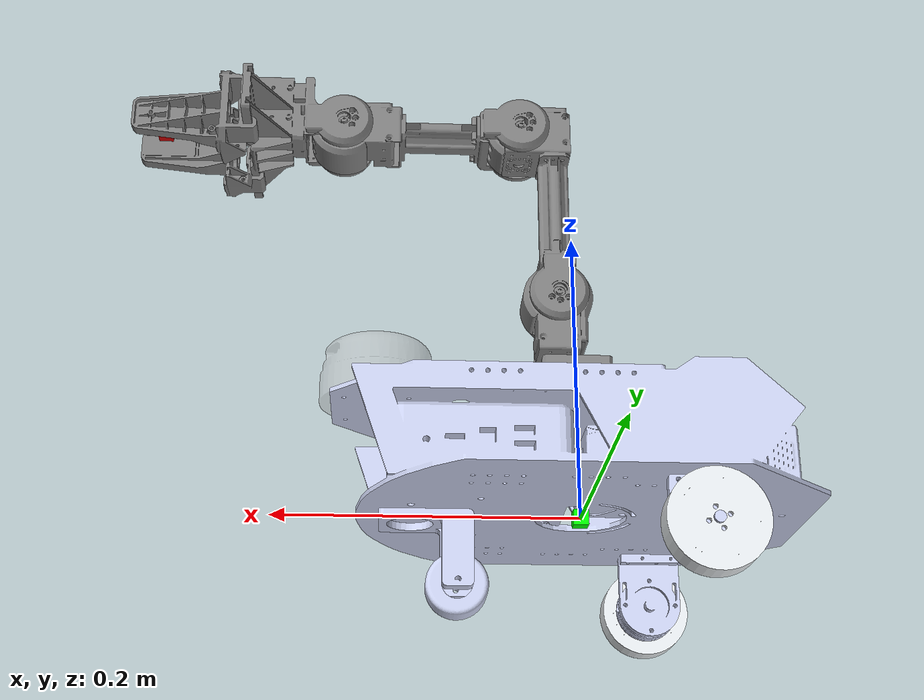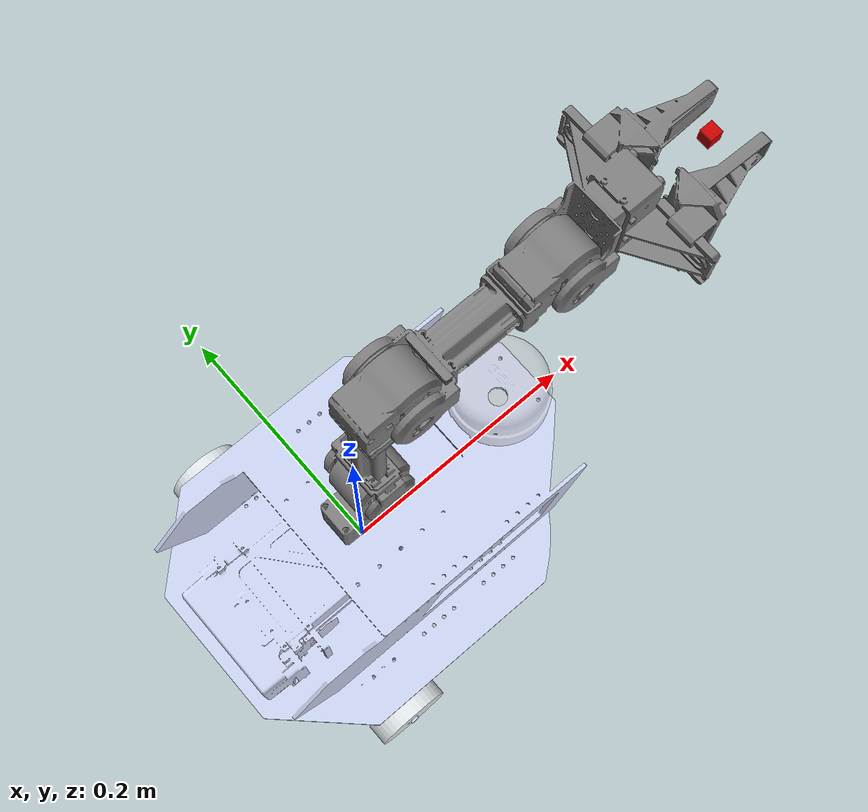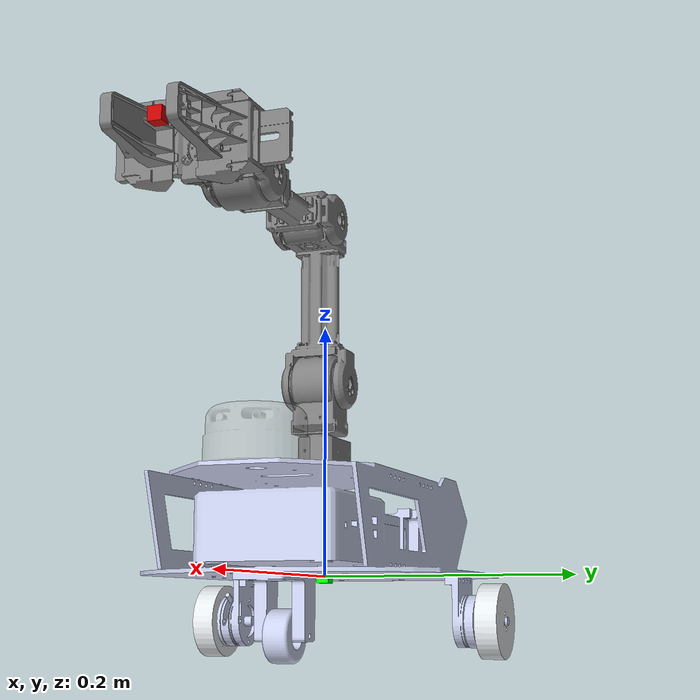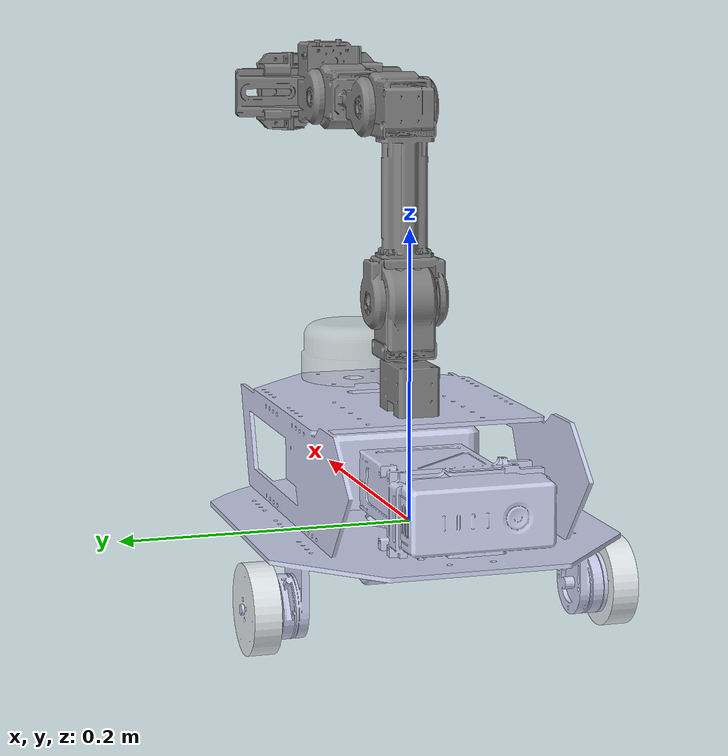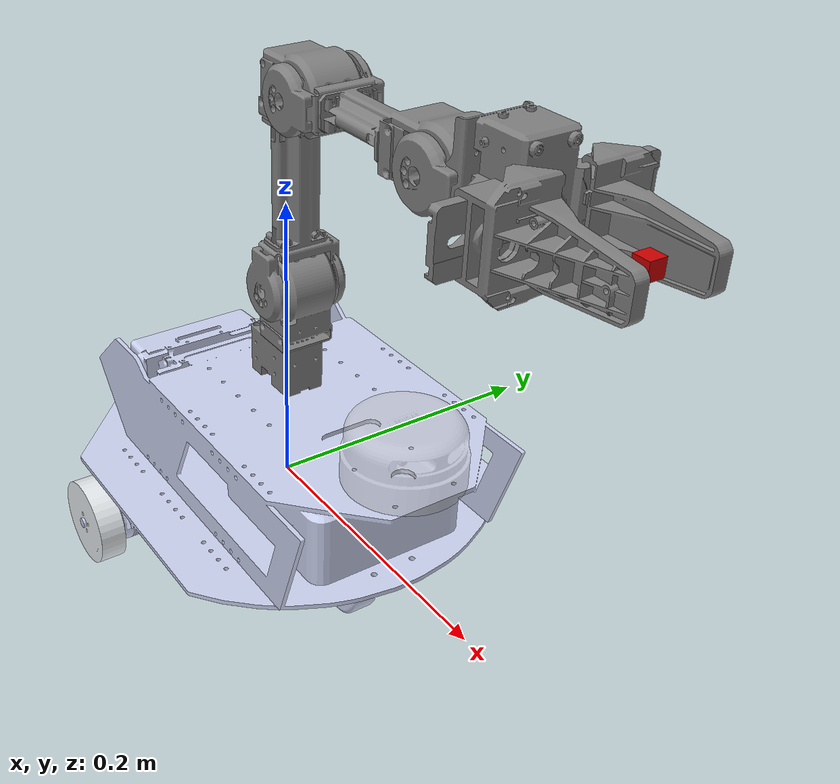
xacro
<?xml version="1.0" encoding="utf-8"?>
<robot name="arx_mini_description" xmlns:xacro="http://ros.org/wiki/xacro">

  <!-- Import Rviz colors -->
  <xacro:include filename="$(find open_manipulator_description)/urdf/materials.xacro" />

  <!-- Import all Gazebo-customization elements, including Gazebo colors -->
  <xacro:include filename="$(find open_manipulator_description)/urdf/open_manipulator.gazebo.xacro" />

  <!-- Import Transmission -->
  <xacro:include filename="$(find open_manipulator_description)/urdf/open_manipulator.transmission.xacro" />

  <!-- Import URDF -->
  <xacro:include filename="$(find open_manipulator_description)/urdf/open_manipulator.urdf.xacro" />

  <!-- manipulator fixed joint-->
  <joint name="manipulator_fixed" type="fixed">
    <origin xyz="0 0 0.075" rpy="0 0 0"/>
    <parent link="base_link"/>
    <child link="link1"/>
  </joint>

  <link
    name="base_link">
    <inertial>
      <origin
        xyz="0.015887 -0.00054953 0.028848"
        rpy="0 0 0" />
      <mass
        value="15.062" />
      <inertia
        ixx="0.0021916"
        ixy="-3.614E-06"
        ixz="8.4882E-06"
        iyy="0.0032298"
        iyz="2.6215E-06"
        izz="0.004925" />
    </inertial>
    <visual>
      <origin
        xyz="0 0 0"
        rpy="0 0 0" />
      <geometry>
        <mesh
          filename="package://arx_mini_description/meshes/base_link.STL" />
      </geometry>
      <material
        name="">
        <color
          rgba="0.79216 0.81961 0.93333 1" />
      </material>
    </visual>
    <collision>
      <origin
        xyz="0 0 0"
        rpy="0 0 0" />
      <geometry>
        <mesh
          filename="package://arx_mini_description/meshes/base_link.STL" />
      </geometry>
    </collision>
  </link>
  <link
    name="laser">
    <inertial>
      <origin
        xyz="-0.00056545 -1.4938E-05 -0.011701"
        rpy="0 0 0" />
      <mass
        value="1.6538" />
      <inertia
        ixx="7.8865E-05"
        ixy="4.8472E-08"
        ixz="2.1848E-06"
        iyy="7.519E-05"
        iyz="2.886E-08"
        izz="0.00010995" />
    </inertial>
    <visual>
      <origin
        xyz="0 0 0"
        rpy="0 0 0" />
      <geometry>
        <mesh
          filename="package://arx_mini_description/meshes/laser.STL" />
      </geometry>
      <material
        name="">
        <color
          rgba="0.75294 0.75294 0.75294 0.4" />
      </material>
    </visual>
    <collision>
      <origin
        xyz="0 0 0"
        rpy="0 0 0" />
      <geometry>
        <mesh
          filename="package://arx_mini_description/meshes/laser.STL" />
      </geometry>
    </collision>
  </link>
  <joint
    name="base_link_to_laser"
    type="fixed">
    <origin
      xyz="0.133 0 0.107171615364778"
      rpy="0 0 0" />
    <parent
      link="base_link" />
    <child
      link="laser" />
    <axis
      xyz="0 0 0" />
  </joint>
  <link
    name="left_wheel_link">
    <inertial>
      <origin
        xyz="-1.3878E-17 -0.0080105 -1.3878E-17"
        rpy="0 0 0" />
      <mass
        value="0.80724" />
      <inertia
        ixx="2.6957E-05"
        ixy="-7.5305E-20"
        ixz="1.469E-21"
        iyy="4.9447E-05"
        iyz="2.2384E-20"
        izz="2.6957E-05" />
    </inertial>
    <visual>
      <origin
        xyz="0 0 0"
        rpy="0 0 0" />
      <geometry>
        <mesh
          filename="package://arx_mini_description/meshes/left_wheel_link.STL" />
      </geometry>
      <material
        name="">
        <color
          rgba="0.89804 0.91765 0.92941 1" />
      </material>
    </visual>
    <collision>
      <origin
        xyz="0 0 0"
        rpy="0 0 0" />
      <geometry>
        <mesh
          filename="package://arx_mini_description/meshes/left_wheel_link.STL" />
      </geometry>
    </collision>
  </link>
  <joint
    name="base_link_to_left_wheel"
    type="continuous">
    <origin
      xyz="-0.06 0.131 -0.035"
      rpy="0 0 0" />
    <parent
      link="base_link" />
    <child
      link="left_wheel_link" />
    <axis
      xyz="0 1 0" />
  </joint>
  <link
    name="right_wheel_link">
    <inertial>
      <origin
        xyz="2.7756E-17 0.0080105 -1.3878E-17"
        rpy="0 0 0" />
      <mass
        value="0.80724" />
      <inertia
        ixx="2.6957E-05"
        ixy="-7.4963E-20"
        ixz="-1.469E-21"
        iyy="4.9447E-05"
        iyz="-2.3687E-20"
        izz="2.6957E-05" />
    </inertial>
    <visual>
      <origin
        xyz="0 0 0"
        rpy="0 0 0" />
      <geometry>
        <mesh
          filename="package://arx_mini_description/meshes/right_wheel_link.STL" />
      </geometry>
      <material
        name="">
        <color
          rgba="0.89804 0.91765 0.92941 1" />
      </material>
    </visual>
    <collision>
      <origin
        xyz="0 0 0"
        rpy="0 0 0" />
      <geometry>
        <mesh
          filename="package://arx_mini_description/meshes/right_wheel_link.STL" />
      </geometry>
    </collision>
  </link>
  <joint
    name="base_link_to_right_wheel"
    type="continuous">
    <origin
      xyz="-0.06 -0.131 -0.035"
      rpy="0 0 0" />
    <parent
      link="base_link" />
    <child
      link="right_wheel_link" />
    <axis
      xyz="0 1 0" />
  </joint>
  <link
    name="caster_holder_link">
    <inertial>
      <origin
        xyz="-0.024794 0 -0.018851"
        rpy="0 0 0" />
      <mass
        value="0.25767" />
      <inertia
        ixx="1.1549E-05"
        ixy="3.8856E-21"
        ixz="-2.1936E-06"
        iyy="1.0961E-05"
        iyz="-8.0435E-22"
        izz="1.0298E-05" />
    </inertial>
    <visual>
      <origin
        xyz="0 0 0"
        rpy="0 0 0" />
      <geometry>
        <mesh
          filename="package://arx_mini_description/meshes/caster_holder_link.STL" />
      </geometry>
      <material
        name="">
        <color
          rgba="0.79216 0.81961 0.93333 1" />
      </material>
    </visual>
    <collision>
      <origin
        xyz="0 0 0"
        rpy="0 0 0" />
      <geometry>
        <mesh
          filename="package://arx_mini_description/meshes/caster_holder_link.STL" />
      </geometry>
    </collision>
  </link>
  <joint
    name="base_link_to_caster_holder"
    type="continuous">
    <origin
      xyz="0.11 0 0"
      rpy="0 0 0" />
    <parent
      link="base_link" />
    <child
      link="caster_holder_link" />
    <axis
      xyz="0 0 -1" />
  </joint>
  <link
    name="caster_wheel_link">
    <inertial>
      <origin
        xyz="2.7756E-17 0.01 0"
        rpy="0 0 0" />
      <mass
        value="0.1838" />
      <inertia
        ixx="2.8557E-06"
        ixy="-7.698E-22"
        ixz="9.2088E-39"
        iyy="4.5367E-06"
        iyz="-4.5492E-23"
        izz="2.8557E-06" />
    </inertial>
    <visual>
      <origin
        xyz="0 0 0"
        rpy="0 0 0" />
      <geometry>
        <mesh
          filename="package://arx_mini_description/meshes/caster_wheel_link.STL" />
      </geometry>
      <material
        name="">
        <color
          rgba="0.79216 0.81961 0.93333 1" />
      </material>
    </visual>
    <collision>
      <origin
        xyz="0 0 0"
        rpy="0 0 0" />
      <geometry>
        <mesh
          filename="package://arx_mini_description/meshes/caster_wheel_link.STL" />
      </geometry>
    </collision>
  </link>
  <joint
    name="base_link_to_caster_wheel"
    type="continuous">
    <origin
      xyz="-0.03 -0.01 -0.045"
      rpy="0 0 0" />
    <parent
      link="caster_holder_link" />
    <child
      link="caster_wheel_link" />
    <axis
      xyz="0 1 0" />
  </joint>
  <link name="imu_link">
    <collision>
      <origin rpy="0 0 0" xyz="0 0 0"/>
      <geometry>
        <box size="0.01 0.01 0.01"/>
      </geometry>
    </collision>
    <visual>
      <origin rpy="0 0 0" xyz="0 0 0"/>
      <geometry>
        <box size="0.01 0.01 0.01"/>
      </geometry>
      <material name="green">
        <color rgba="0 1 0 1"/>
      </material>
    </visual>
    <inertial>
      <mass value="1e-2"/>
      <origin rpy="0 0 0" xyz="0 0 0"/>
      <inertia ixx="1e-6" ixy="0" ixz="0" iyy="1e-6" iyz="0" izz="1e-6"/>
    </inertial>
  </link>
  <joint name="base_link_to_imu_link" type="fixed">
    <axis xyz="0 1 0"/>
    <origin rpy="0 0 0" xyz="0 0 0"/>
    <parent link="base_link"/>
    <child link="imu_link"/>
  </joint>

  <transmission name="base_link_to_left_wheel_trans">
    <type>transmission_interface/SimpleTransmission</type>
    <joint name="base_link_to_left_wheel">
      <hardwareInterface>hardware_interface/VelocityJointInterface</hardwareInterface>
    </joint>
    <actuator name="base_link_to_left_wheel_motor">
      <hardwareInterface>hardware_interface/VelocityJointInterface</hardwareInterface>
      <mechanicalReduction>1</mechanicalReduction>
    </actuator>
  </transmission>

  <transmission name="base_link_to_right_wheel_trans">
    <type>transmission_interface/SimpleTransmission</type>
    <joint name="base_link_to_right_wheel">
      <hardwareInterface>hardware_interface/VelocityJointInterface</hardwareInterface>
    </joint>
    <actuator name="base_link_to_right_wheel_motor">
      <hardwareInterface>hardware_interface/VelocityJointInterface</hardwareInterface>
      <mechanicalReduction>1</mechanicalReduction>
    </actuator>
  </transmission>

  <transmission name="base_link_to_caster_holder_trans">
    <type>transmission_interface/SimpleTransmission</type>
    <joint name="base_link_to_caster_holder_wheel">
      <hardwareInterface>hardware_interface/VelocityJointInterface</hardwareInterface>
    </joint>
    <actuator name="base_link_to_caster_holder_motor">
      <hardwareInterface>hardware_interface/VelocityJointInterface</hardwareInterface>
      <mechanicalReduction>1</mechanicalReduction>
    </actuator>
  </transmission>

  <transmission name="base_link_to_caster_wheel_trans">
    <type>transmission_interface/SimpleTransmission</type>
    <joint name="base_link_to_caster_wheel_wheel">
      <hardwareInterface>hardware_interface/VelocityJointInterface</hardwareInterface>
    </joint>
    <actuator name="base_link_to_caster_wheel_motor">
      <hardwareInterface>hardware_interface/VelocityJointInterface</hardwareInterface>
      <mechanicalReduction>1</mechanicalReduction>
    </actuator>
  </transmission>

  <gazebo reference="base_link">
    <material>Gazebo/White</material>
  </gazebo>
  <gazebo reference="base_footprint">
    <material>Gazebo/White</material>
  </gazebo>
  <gazebo reference="imu_link">
    <material>Gazebo/White</material>
  </gazebo>
  <gazebo reference="left_wheel_link">
    <material>Gazebo/White</material>
  </gazebo>
  <gazebo reference="right_wheel_link">
    <material>Gazebo/White</material>
  </gazebo>
  <gazebo reference="caster_holder_link">
    <material>Gazebo/White</material>
  </gazebo>
  <gazebo reference="caster_wheel_link">
    <material>Gazebo/White</material>
  </gazebo>
  <gazebo reference="laser">
    <material>Gazebo/White</material>
  </gazebo>

<gazebo>
  <plugin name="differential_drive_controller" filename="libgazebo_ros_diff_drive.so">
    <updateRate> 50 </updateRate>
    <rosDebugLevel>Debug</rosDebugLevel>
    <leftJoint>base_link_to_left_wheel</leftJoint>
    <rightJoint>base_link_to_right_wheel</rightJoint>
    <wheelSeparation>0.241</wheelSeparation>
    <wheelDiameter>0.06</wheelDiameter>
    <wheelAcceleration>1.0</wheelAcceleration>
    <wheelTorque>20</wheelTorque>
    <commandTopic>cmd_vel</commandTopic>
    <odometryTopic>wheel_odom</odometryTopic>
    <odometryFrame>wheel_odom</odometryFrame>
    <robotBaseFrame>base_footprint</robotBaseFrame>
    <odometrySource>world</odometrySource>
    <publishWheelTF>false</publishWheelTF>
    <publishOdom>true</publishOdom>
    <publishOdomTF>false</publishOdomTF>
    <publishTF>false</publishTF>
    <publishWheelJointState>false</publishWheelJointState>
    <legacyMode>false</legacyMode>
  </plugin>
</gazebo>

  <gazebo reference="laser">
    <sensor name="head_hokuyo_sensor" type="ray">
      <!-- GPU -->
      <pose>0 0 0 0 0 0</pose>
      <visualize>false</visualize>
      <update_rate>15</update_rate>
      <ray>
        <scan>
          <horizontal>
            <samples>720</samples>
            <resolution>1</resolution>
            <min_angle>-3.1415926</min_angle>
            <max_angle>3.1415926</max_angle>
          </horizontal>
        </scan>
        <range>
          <min>0.05</min>
          <max>30.0</max>
          <resolution>0.01</resolution>
        </range>
        <noise>
          <type>gaussian</type>
          <mean>0.0</mean>
          <stddev>0.01</stddev>
        </noise>
      </ray>
      <!-- GPU版本 -->
      <plugin filename="libgazebo_ros_laser.so" name="gazebo_ros_head_hokuyo_controller">
        <topicName>scan</topicName>
        <frameName>laser</frameName>
      </plugin>
    </sensor>
  </gazebo>

  <gazebo reference="imu_link">
    <gravity>true</gravity>
    <sensor name="imu_sensor" type="imu">
      <always_on>true</always_on>
      <update_rate>100</update_rate>
      <visualize>true</visualize>
      <topic>__default_topic__</topic>
      <plugin filename="libgazebo_ros_imu_sensor.so" name="imu_plugin">
        <topicName>gazebo/imu/data</topicName>
        <bodyName>imu_link</bodyName>
        <updateRateHZ>100.0</updateRateHZ>
        <gaussianNoise>0.0</gaussianNoise>
        <xyzOffset>0 0 0</xyzOffset>
        <rpyOffset>0 0 0</rpyOffset>
        <frameName>imu_link</frameName>
      </plugin>
      <pose>0 0 0 0 0 0</pose>
    </sensor>
  </gazebo>

</robot>

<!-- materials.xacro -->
<robot>

  <material name="black">
    <color rgba="0.0 0.0 0.0 1.0"/>
  </material>

  <material name="white">
    <color rgba="1.0 1.0 1.0 1.0"/>
  </material>

  <material name="red">
    <color rgba="0.8 0.0 0.0 1.0"/>
  </material>

  <material name="blue">
    <color rgba="0.0 0.0 0.8 1.0"/>
  </material>

  <material name="green">
    <color rgba="0.0 0.8 0.0 1.0"/>
  </material>

  <material name="grey">
    <color rgba="0.5 0.5 0.5 1.0"/>
  </material>

  <material name="orange">
    <color rgba="${255/255} ${108/255} ${10/255} 1.0"/>
  </material>

  <material name="brown">
    <color rgba="${222/255} ${207/255} ${195/255} 1.0"/>
  </material>

</robot>

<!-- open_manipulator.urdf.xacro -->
<!-- Open_Manipulator Chain -->
<robot xmlns:xacro="http://ros.org/wiki/xacro">

  <!-- Link 1 -->
  <link name="link1">
    <visual>
      <origin xyz="0 0 0" rpy="0 0 0"/>
      <geometry>
        <mesh filename="package://open_manipulator_description/meshes/chain_link1.stl" scale="0.001 0.001 0.001"/>
      </geometry>
      <material name="grey"/>
    </visual>

    <collision>
      <origin xyz="0 0 0" rpy="0 0 0"/>
      <geometry>
        <mesh filename="package://open_manipulator_description/meshes/chain_link1.stl" scale="0.001 0.001 0.001"/>
      </geometry>
    </collision>

    <inertial>
      <origin xyz="3.0876154e-04 0.0000000e+00 -1.2176461e-04" />
      <mass value="7.9119962e-02" />
      <inertia ixx="1.2505234e-05" ixy="0.0" ixz="-1.7855208e-07"
               iyy="2.1898364e-05" iyz="0.0"
               izz="1.9267361e-05" />
    </inertial>
  </link>

  <!-- Joint 1 -->
  <joint name="joint1" type="revolute">
    <parent link="link1"/>
    <child link="link2"/>
    <origin xyz="0.012 0.0 0.017" rpy="0 0 0"/>
    <axis xyz="0 0 1"/>
    <limit velocity="4.8" effort="1" lower="${-pi*0.9}" upper="${pi*0.9}" />
  </joint>

  <!--  Link 2 -->
  <link name="link2">
    <visual>
      <origin xyz="0 0 0.019" rpy="0 0 0"/>
      <geometry>
        <mesh filename="package://open_manipulator_description/meshes/chain_link2.stl" scale="0.001 0.001 0.001"/>
      </geometry>
      <material name="grey"/>
    </visual>

    <collision>
      <origin xyz="0 0 0.019" rpy="0 0 0"/>
      <geometry>
        <mesh filename="package://open_manipulator_description/meshes/chain_link2.stl" scale="0.001 0.001 0.001"/>
      </geometry>
    </collision>

    <inertial>
      <origin xyz="-3.0184870e-04 5.4043684e-04 ${0.018 + 2.9433464e-02}" />
      <mass value="9.8406837e-02" />
      <inertia ixx="3.4543422e-05" ixy="-1.6031095e-08" ixz="-3.8375155e-07"
               iyy="3.2689329e-05" iyz="2.8511935e-08"
               izz="1.8850320e-05" />
    </inertial>
  </link>

  <!--  Joint 2 -->
  <joint name="joint2" type="revolute">
    <parent link="link2"/>
    <child link="link3"/>
    <origin xyz="0.0 0.0 0.0595" rpy="0 0 0"/>
    <axis xyz="0 1 0"/>
    <limit velocity="4.8" effort="1" lower="${-pi*0.57}" upper="${pi*0.5}" />
  </joint>

  <!--  Link 3 -->
  <link name="link3">
    <visual>
      <origin xyz="0 0 0" rpy="0 0 0"/>
      <geometry>
        <mesh filename="package://open_manipulator_description/meshes/chain_link3.stl" scale="0.001 0.001 0.001"/>
      </geometry>
      <material name="grey"/>
    </visual>

    <collision>
      <origin xyz="0 0 0" rpy="0 0 0"/>
      <geometry>
        <mesh filename="package://open_manipulator_description/meshes/chain_link3.stl" scale="0.001 0.001 0.001"/>
      </geometry>
    </collision>

    <inertial>
      <origin xyz="1.0308393e-02 3.7743363e-04 1.0170197e-01" />
      <mass value="1.3850917e-01" />
      <inertia ixx="3.3055381e-04" ixy="-9.7940978e-08" ixz="-3.8505711e-05"
               iyy="3.4290447e-04" iyz="-1.5717516e-06"
               izz="6.0346498e-05" />
    </inertial>
  </link>

  <!--  Joint 3 -->
  <joint name="joint3" type="revolute">
    <parent link="link3"/>
    <child link="link4"/>
    <origin xyz="0.024 0 0.128" rpy="0 0 0"/>
    <axis xyz="0 1 0"/>
    <limit velocity="4.8" effort="1" lower="${-pi*0.3}" upper="${pi*0.44}" />
  </joint>

  <!--  Link 4 -->
  <link name="link4">
    <visual>
      <origin xyz="0 0 0" rpy="0 0 0"/>
      <geometry>
        <mesh filename="package://open_manipulator_description/meshes/chain_link4.stl" scale="0.001 0.001 0.001"/>
      </geometry>
      <material name="grey"/>
    </visual>

    <collision>
      <origin xyz="0 0 0" rpy="0 0 0"/>
      <geometry>
        <mesh filename="package://open_manipulator_description/meshes/chain_link4.stl" scale="0.001 0.001 0.001"/>
      </geometry>
    </collision>

    <inertial>
      <origin xyz="9.0909590e-02 3.8929816e-04 2.2413279e-04" />
      <mass value="1.3274562e-01" />
      <inertia ixx="3.0654178e-05" ixy="-1.2764155e-06" ixz="-2.6874417e-07"
               iyy="2.4230292e-04" iyz="1.1559550e-08"
               izz="2.5155057e-04" />
    </inertial>
  </link>

  <!--  Joint 4 -->
  <joint name="joint4" type="revolute">
    <parent link="link4"/>
    <child link="link5"/>
    <origin xyz="0.124 0.0 0.0" rpy="0 0 0"/>
    <axis xyz="0 1 0"/>
    <limit velocity="4.8" effort="1" lower="${-pi*0.57}" upper="${pi*0.65}" />
  </joint>

  <!--  Link 5 -->
  <link name="link5">
    <visual>
      <origin xyz="0 0 0" rpy="0 0 0"/>
      <geometry>
        <mesh filename="package://open_manipulator_description/meshes/chain_link5.stl" scale="0.001 0.001 0.001"/>
      </geometry>
      <material name="grey"/>
    </visual>

    <collision>
      <origin xyz="0 0 0" rpy="0 0 0"/>
      <geometry>
        <mesh filename="package://open_manipulator_description/meshes/chain_link5.stl" scale="0.001 0.001 0.001"/>
      </geometry>
    </collision>

    <inertial>
      <origin xyz="4.4206755e-02 3.6839985e-07 8.9142216e-03" />
      <mass value="1.4327573e-01" />
      <inertia ixx="8.0870749e-05" ixy="0.0" ixz="-1.0157896e-06"
               iyy="7.5980465e-05" iyz="0.0"
               izz="9.3127351e-05" />
    </inertial>
  </link>

  <!--  Gripper joint -->
  <joint name="gripper" type="prismatic">
    <parent link="link5"/>
    <child link="gripper_link"/>
    <origin xyz="0.0817 0.021 0.0" rpy="0 0 0"/>
    <axis xyz="0 1 0"/>
    <limit velocity="4.8" effort="1" lower="-0.010" upper="0.019" />
  </joint>

  <!--  Gripper link -->
  <link name="gripper_link">
    <visual>
      <origin xyz="0.0 0.0 0" rpy="0 0 0"/>
      <geometry>
        <mesh filename="package://open_manipulator_description/meshes/chain_link_grip_l.stl" scale="0.001 0.001 0.001"/>
      </geometry>
      <material name="grey"/>
    </visual>

    <collision>
      <origin xyz="0.0 0.0 0" rpy="0 0 0"/>
      <geometry>
        <mesh filename="package://open_manipulator_description/meshes/chain_link_grip_l.stl" scale="0.001 0.001 0.001"/>
      </geometry>
    </collision>

    <inertial>
      <origin xyz="0 0 0" />
      <mass value="1.0e-03" />
      <inertia ixx="1.0e-03" ixy="0.0" ixz="0.0"
               iyy="1.0e-03" iyz="0.0"
               izz="1.0e-03" />
    </inertial>
  </link>

  <!--  Gripper joint sub -->
  <joint name="gripper_sub" type="prismatic">
    <parent link="link5"/>
    <child link="gripper_link_sub"/>
    <origin xyz="0.0817 -0.021 0" rpy="0 0 0"/>
    <axis xyz="0 -1 0"/>
    <limit velocity="4.8" effort="1" lower="-0.010" upper="0.019" />
    <mimic joint="gripper" multiplier="1"/>
  </joint>

  <!--  Gripper link sub -->
  <link name="gripper_link_sub">
    <visual>
      <origin xyz="0.0 -0.0 0" rpy="0 0 0"/>
      <geometry>
        <mesh filename="package://open_manipulator_description/meshes/chain_link_grip_r.stl" scale="0.001 0.001 0.001"/>
      </geometry>
      <material name="grey"/>
    </visual>

    <collision>
      <origin xyz="0.0 -0.0 0" rpy="0 0 0"/>
      <geometry>
        <mesh filename="package://open_manipulator_description/meshes/chain_link_grip_r.stl" scale="0.001 0.001 0.001"/>
      </geometry>
    </collision>

    <inertial>
      <origin xyz="0 0 0" />
      <mass value="1.0e-03" />
      <inertia ixx="1.0e-03" ixy="0.0" ixz="0.0"
               iyy="1.0e-03" iyz="0.0"
               izz="1.0e-03" />
    </inertial>
  </link>

  <!-- end effector joint -->
  <joint name="end_effector_joint" type="fixed">
    <origin xyz="0.126 0.0 0.0" rpy="0 0 0"/>
    <parent link="link5"/>
    <child link="end_effector_link"/>
  </joint>

  <!-- end effector link -->
  <link name="end_effector_link">
    <visual>
      <origin xyz="0 0 0" rpy="0 0 0"/>
      <geometry>
        <box size="0.01 0.01 0.01" />
      </geometry>
      <material name="red"/>
     </visual>

    <inertial>
      <origin xyz="0 0 0" />
      <mass value="1.0e-03" />
      <inertia ixx="1.0e-03" ixy="0.0" ixz="0.0"
               iyy="1.0e-03" iyz="0.0"
               izz="1.0e-03" />
    </inertial>
  </link>

  <!-- Realsense Camera Joint Position -->

</robot>
